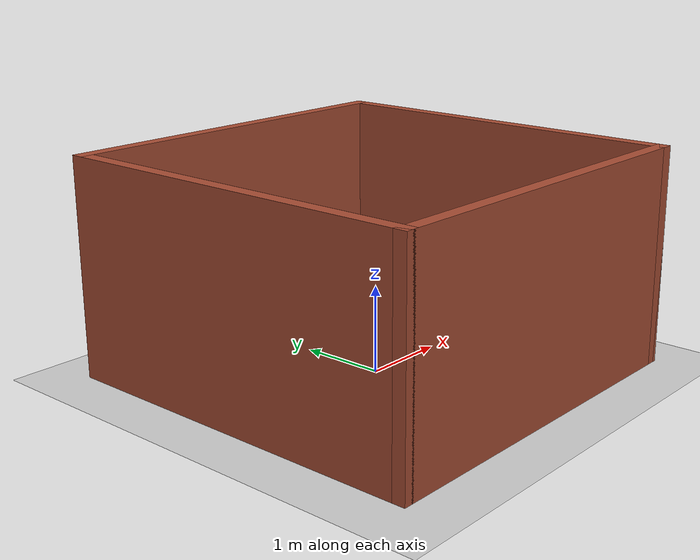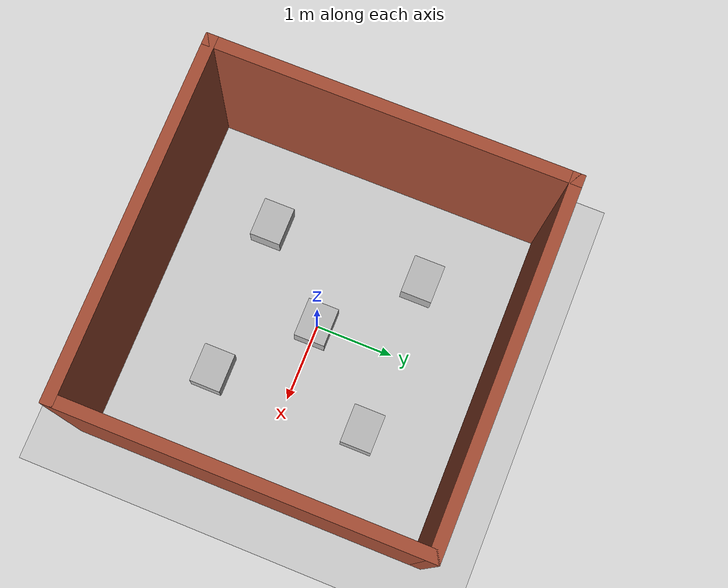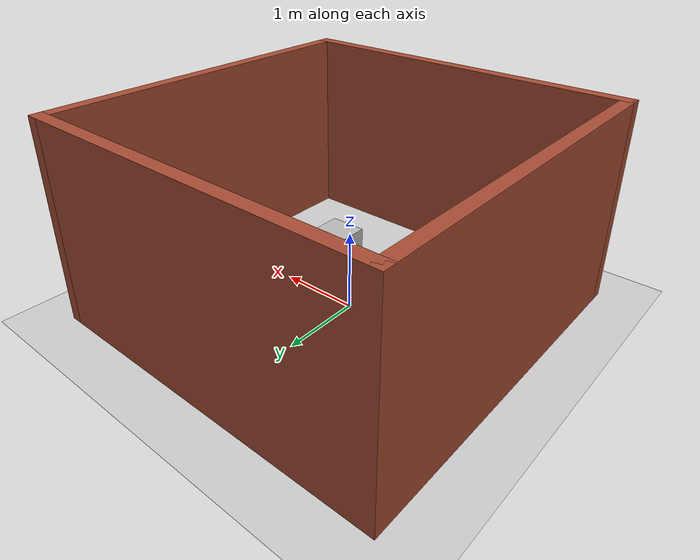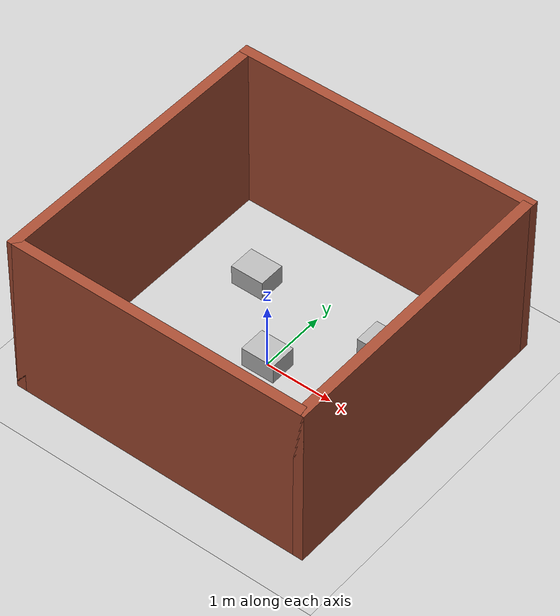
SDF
<sdf version="1.6">
 <world name="default">
  <plugin name="gazebo_ros_factory" filename="libgazebo_ros_factory.so"/>
  <light name="sun" type="directional">
   <pose>0 0 10 0 -0 0</pose>
   <diffuse>0.8 0.8 0.8 1</diffuse>
   <specular>0.2 0.2 0.2 1</specular>
   <attenuation>
    <range>1000</range>
    <constant>0.9</constant>
    <linear>0.01</linear>
    <quadratic>0.001</quadratic>
   </attenuation>
   <direction>-0.5 0.1 -0.9</direction>
  </light>
  <model name="ground_plane">
   <static>1</static>
   <link name="link">
    <collision name="collision">
     <geometry><plane><normal>0 0 1</normal><size>100 100</size></plane></geometry>
     <surface><friction><ode><mu>100</mu><mu2>50</mu2></ode></friction></surface>
    </collision>
    <visual name="visual">
     <cast_shadows>0</cast_shadows>
     <geometry><plane><normal>0 0 1</normal><size>100 100</size></plane></geometry>
     <material>
      <script><uri>file://media/materials/scripts/gazebo.material</uri><name>Gazebo/Grey</name></script>
     </material>
    </visual>
   </link>
  </model>
  <gravity>0 0 -9.8</gravity>
  <magnetic_field>6e-06 2.3e-05 -4.2e-05</magnetic_field>
  <atmosphere type="adiabatic"/>
  <physics name="default_physics" default="0" type="ode">
   <max_step_size>0.001</max_step_size>
   <real_time_factor>1</real_time_factor>
   <real_time_update_rate>1000</real_time_update_rate>
  </physics>
  <scene><ambient>0.4 0.4 0.4 1</ambient><background>0.7 0.7 0.7 1</background><shadows>1</shadows></scene>
  <spherical_coordinates>
   <surface_model>EARTH_WGS84</surface_model>
   <latitude_deg>0</latitude_deg>
   <longitude_deg>0</longitude_deg>
   <elevation>0</elevation>
   <heading_deg>0</heading_deg>
  </spherical_coordinates>
  <model name="bricks">
   <pose>0.070099 0.037861 0 0 -0 0</pose>
   <link name="Wall_32">
    <collision name="Wall_32_Collision">
     <geometry><box><size>4.5 0.15 2.5</size></box></geometry>
     <pose>0 0 1.25 0 -0 0</pose>
    </collision>
    <visual name="Wall_32_Visual">
     <pose>0 0 1.25 0 -0 0</pose>
     <geometry><box><size>4.5 0.15 2.5</size></box></geometry>
     <material>
      <script><uri>file://media/materials/scripts/gazebo.material</uri><name>Gazebo/Bricks</name></script>
      <ambient>1 1 1 1</ambient>
     </material>
     <meta><layer>0</layer></meta>
    </visual>
    <pose>-2.175 0 0 0 -0 1.5708</pose>
   </link>
   <link name="Wall_39">
    <collision name="Wall_39_Collision">
     <geometry><box><size>4.5 0.15 2.5</size></box></geometry>
     <pose>0 0 1.25 0 -0 0</pose>
    </collision>
    <visual name="Wall_39_Visual">
     <pose>0 0 1.25 0 -0 0</pose>
     <geometry><box><size>4.5 0.15 2.5</size></box></geometry>
     <material>
      <script><uri>file://media/materials/scripts/gazebo.material</uri><name>Gazebo/Bricks</name></script>
      <ambient>1 1 1 1</ambient>
     </material>
     <meta><layer>0</layer></meta>
    </visual>
    <pose>-0 -2.175 0 0 -0 0</pose>
   </link>
   <link name="Wall_40">
    <collision name="Wall_40_Collision">
     <geometry><box><size>4.5 0.15 2.5</size></box></geometry>
     <pose>0 0 1.25 0 -0 0</pose>
    </collision>
    <visual name="Wall_40_Visual">
     <pose>0 0 1.25 0 -0 0</pose>
     <geometry><box><size>4.5 0.15 2.5</size></box></geometry>
     <material>
      <script><uri>file://media/materials/scripts/gazebo.material</uri><name>Gazebo/Bricks</name></script>
      <ambient>1 1 1 1</ambient>
     </material>
     <meta><layer>0</layer></meta>
    </visual>
    <pose>2.175 0 0 0 -0 1.5708</pose>
   </link>
   <link name="Wall_41">
    <collision name="Wall_41_Collision">
     <geometry><box><size>4.5 0.15 2.5</size></box></geometry>
     <pose>0 0 1.25 0 -0 0</pose>
    </collision>
    <visual name="Wall_41_Visual">
     <pose>0 0 1.25 0 -0 0</pose>
     <geometry><box><size>4.5 0.15 2.5</size></box></geometry>
     <material>
      <script><uri>file://media/materials/scripts/gazebo.material</uri><name>Gazebo/Bricks</name></script>
      <ambient>1 1 1 1</ambient>
     </material>
     <meta><layer>0</layer></meta>
    </visual>
    <pose>-0 2.175 0 0 -0 3.14159</pose>
   </link>
   <static>1</static>
  </model>
  <model name="cardboard_box">
   <pose>0.007218 -0.005833 0.149 0 -0 0</pose>
   <link name="link">
    <inertial>
     <mass>2</mass>
     <inertia>
      <ixx>0.0416667</ixx>
      <ixy>0</ixy>
      <ixz>0</ixz>
      <iyy>0.0566667</iyy>
      <iyz>0</iyz>
      <izz>0.0683333</izz>
     </inertia>
    </inertial>
    <collision name="collision">
     <geometry><box><size>0.5 0.4 0.3</size></box></geometry>
     <surface>
      <friction><ode><mu>1</mu><mu2>1</mu2></ode></friction>
      <contact><ode><kp>1e+07</kp><kd>1</kd><min_depth>0.001</min_depth><max_vel>0.1</max_vel></ode></contact>
     </surface>
    </collision>
    <visual name="visual">
     <pose>0 0 -0.15 0 -0 0</pose>
     <geometry>
      <mesh><uri>model://cardboard_box/meshes/cardboard_box.dae</uri><scale>1.25932 1.00745 0.755591</scale></mesh>
     </geometry>
    </visual>
   </link>
  </model>
  <model name="cardboard_box_0">
   <pose>-0.999828 1.02347 0.149 0 -0 0</pose>
   <link name="link">
    <inertial>
     <mass>2</mass>
     <inertia>
      <ixx>0.0416667</ixx>
      <ixy>0</ixy>
      <ixz>0</ixz>
      <iyy>0.0566667</iyy>
      <iyz>0</iyz>
      <izz>0.0683333</izz>
     </inertia>
    </inertial>
    <collision name="collision">
     <geometry><box><size>0.5 0.4 0.3</size></box></geometry>
     <surface>
      <friction><ode><mu>1</mu><mu2>1</mu2></ode></friction>
      <contact><ode><kp>1e+07</kp><kd>1</kd><min_depth>0.001</min_depth><max_vel>0.1</max_vel></ode></contact>
     </surface>
    </collision>
    <visual name="visual">
     <pose>0 0 -0.15 0 -0 0</pose>
     <geometry>
      <mesh><uri>model://cardboard_box/meshes/cardboard_box.dae</uri><scale>1.25932 1.00745 0.755591</scale></mesh>
     </geometry>
    </visual>
   </link>
  </model>
  <model name="cardboard_box_1">
   <pose>-0.986646 -1.0078 0.149 0 -0 0</pose>
   <link name="link">
    <inertial>
     <mass>2</mass>
     <inertia>
      <ixx>0.0416667</ixx>
      <ixy>0</ixy>
      <ixz>0</ixz>
      <iyy>0.0566667</iyy>
      <iyz>0</iyz>
      <izz>0.0683333</izz>
     </inertia>
    </inertial>
    <collision name="collision">
     <geometry><box><size>0.5 0.4 0.3</size></box></geometry>
     <surface>
      <friction><ode><mu>1</mu><mu2>1</mu2></ode></friction>
      <contact><ode><kp>1e+07</kp><kd>1</kd><min_depth>0.001</min_depth><max_vel>0.1</max_vel></ode></contact>
     </surface>
    </collision>
    <visual name="visual">
     <pose>0 0 -0.15 0 -0 0</pose>
     <geometry>
      <mesh><uri>model://cardboard_box/meshes/cardboard_box.dae</uri><scale>1.25932 1.00745 0.755591</scale></mesh>
     </geometry>
    </visual>
   </link>
  </model>
  <model name="cardboard_box_2">
   <pose>1.01601 -0.981836 0.149021 2e-06 -2e-06 -0</pose>
   <link name="link">
    <inertial>
     <mass>2</mass>
     <inertia>
      <ixx>0.0416667</ixx>
      <ixy>0</ixy>
      <ixz>0</ixz>
      <iyy>0.0566667</iyy>
      <iyz>0</iyz>
      <izz>0.0683333</izz>
     </inertia>
    </inertial>
    <collision name="collision">
     <geometry><box><size>0.5 0.4 0.3</size></box></geometry>
     <surface>
      <friction><ode><mu>1</mu><mu2>1</mu2></ode></friction>
      <contact><ode><kp>1e+07</kp><kd>1</kd><min_depth>0.001</min_depth><max_vel>0.1</max_vel></ode></contact>
     </surface>
    </collision>
    <visual name="visual">
     <pose>0 0 -0.15 0 -0 0</pose>
     <geometry>
      <mesh><uri>model://cardboard_box/meshes/cardboard_box.dae</uri><scale>1.25932 1.00745 0.755591</scale></mesh>
     </geometry>
    </visual>
   </link>
  </model>
  <model name="cardboard_box_3">
   <pose>1.02445 1.01337 0.14951 2e-06 -2e-06 -0</pose>
   <link name="link">
    <inertial>
     <mass>2</mass>
     <inertia>
      <ixx>0.0416667</ixx>
      <ixy>0</ixy>
      <ixz>0</ixz>
      <iyy>0.0566667</iyy>
      <iyz>0</iyz>
      <izz>0.0683333</izz>
     </inertia>
    </inertial>
    <collision name="collision">
     <geometry><box><size>0.5 0.4 0.3</size></box></geometry>
     <surface>
      <friction><ode><mu>1</mu><mu2>1</mu2></ode></friction>
      <contact><ode><kp>1e+07</kp><kd>1</kd><min_depth>0.001</min_depth><max_vel>0.1</max_vel></ode></contact>
     </surface>
    </collision>
    <visual name="visual">
     <pose>0 0 -0.15 0 -0 0</pose>
     <geometry>
      <mesh><uri>model://cardboard_box/meshes/cardboard_box.dae</uri><scale>1.25932 1.00745 0.755591</scale></mesh>
     </geometry>
    </visual>
   </link>
  </model>
 </world>
</sdf>
